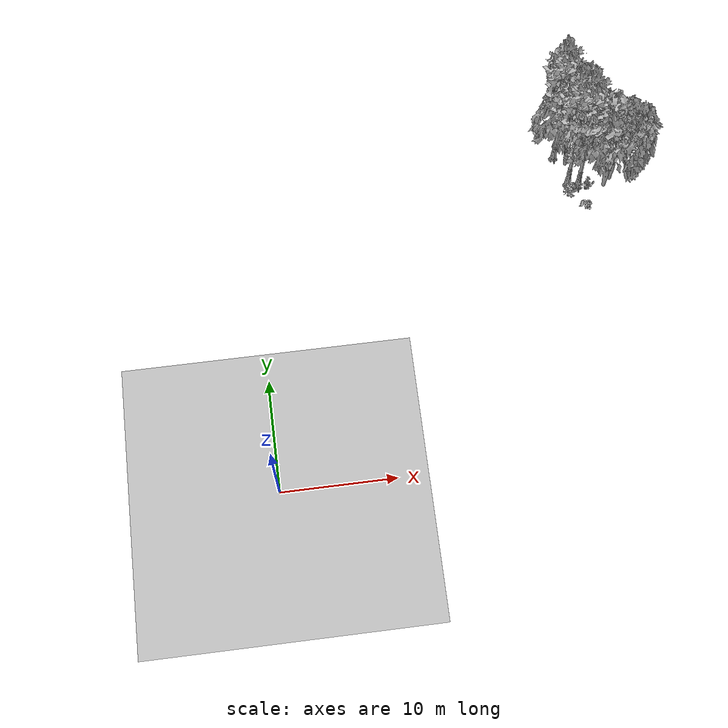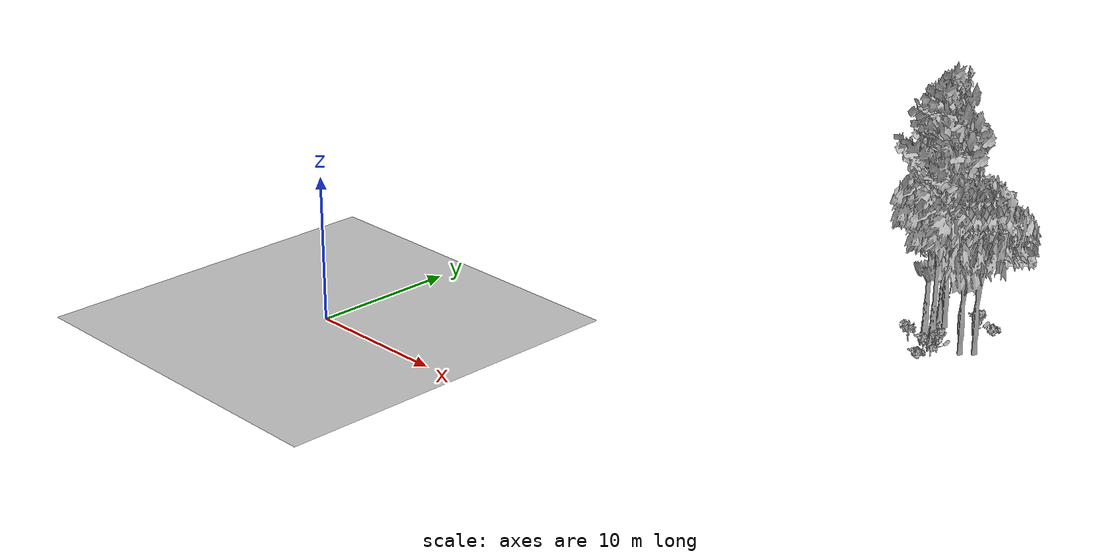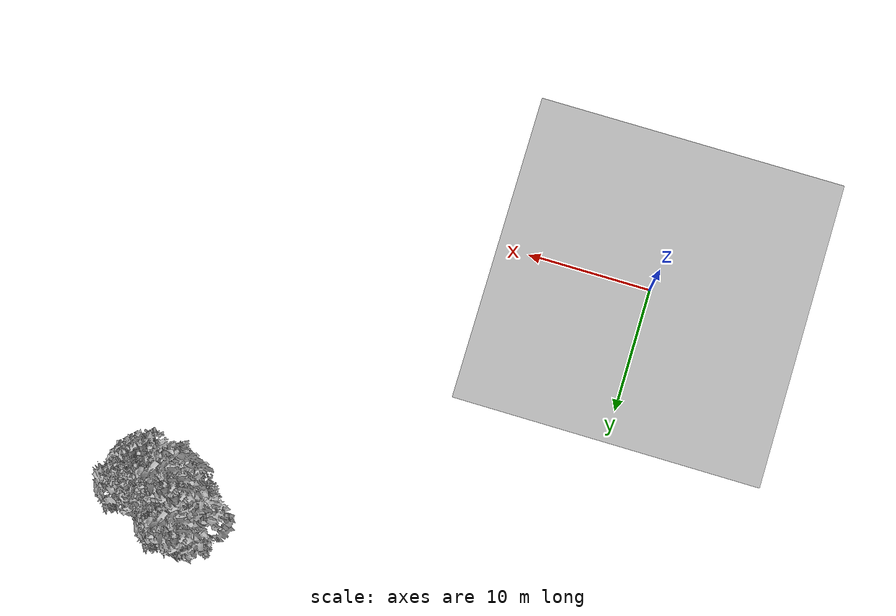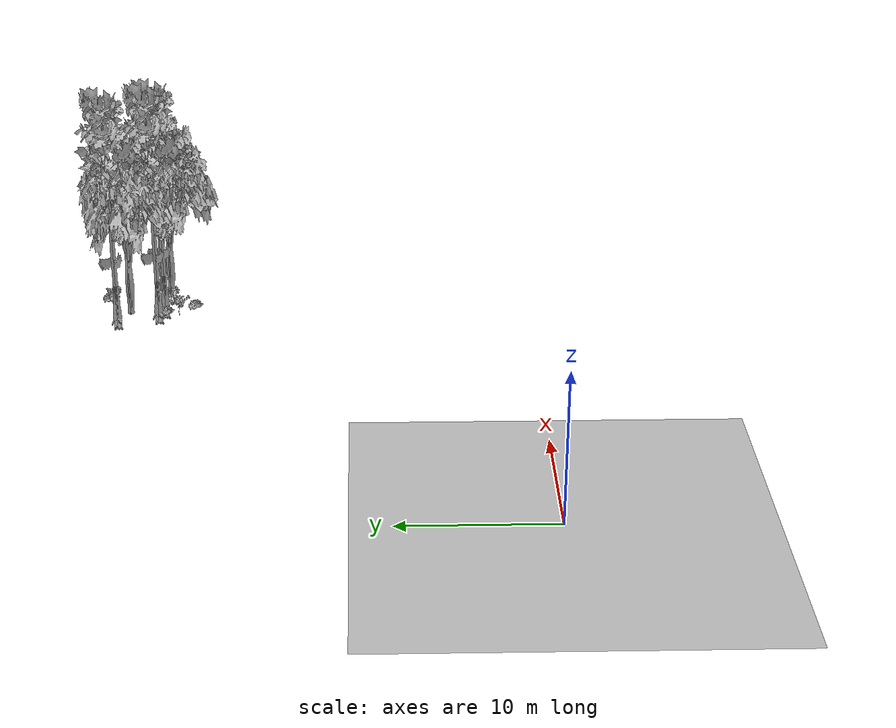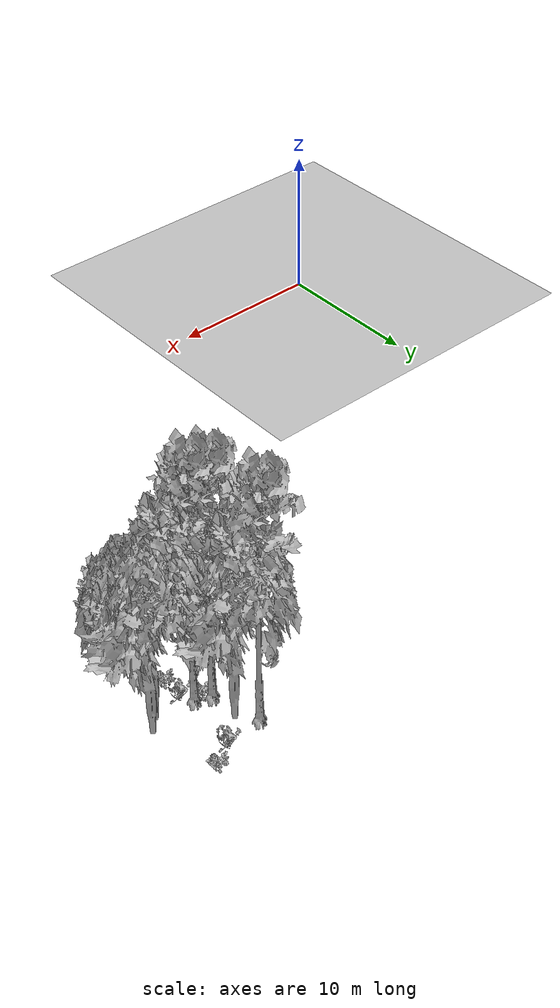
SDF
<sdf version="1.7">
 <world name="default">
  <model name="ground_plane">
   <static>1</static>
   <link name="link">
    <collision name="collision">
     <pose>-50 0 0 0 -0 0</pose>
     <geometry><plane><normal>0 0 1</normal><size>80 80</size></plane></geometry>
     <surface><contact><ode><min_depth>0.01</min_depth><max_vel>0</max_vel></ode></contact></surface>
    </collision>
    <visual name="grass">
     <cast_shadows>0</cast_shadows>
     <geometry>
      <mesh>
       <scale>0.46714285714285714 0.46714285714285714 0.1</scale>
       <uri>file://grass_plane/meshes/grass_plane.dae</uri>
      </mesh>
     </geometry>
    </visual>
   </link>
  </model>
  <model name="Tree 84">
   <static>1</static>
   <pose>29.062732720736875 26.18205261643321 0 1.57079 -0 0</pose>
   <link name="link">
    <collision name="collision">
     <geometry><mesh><scale>3.5 5 3.5</scale><uri>model://tree_9/meshes/tree_9.obj</uri></mesh></geometry>
    </collision>
    <visual name="visual">
     <geometry><mesh><scale>3.5 5 3.5</scale><uri>model://tree_9/meshes/tree_9.obj</uri></mesh></geometry>
    </visual>
   </link>
  </model>
  <model name="Tree 116">
   <static>1</static>
   <pose>32.20633724089387 25.51045634114088 0 1.57079 -0 0</pose>
   <link name="link">
    <collision name="collision">
     <geometry><mesh><scale>3.5 5 3.5</scale><uri>model://tree_2/meshes/tree_2.obj</uri></mesh></geometry>
    </collision>
    <visual name="visual">
     <geometry><mesh><scale>3.5 5 3.5</scale><uri>model://tree_2/meshes/tree_2.obj</uri></mesh></geometry>
    </visual>
   </link>
  </model>
  <model name="Tree 157">
   <static>1</static>
   <pose>29.94987255591097 25.777646393636402 0 1.57079 -0 0</pose>
   <link name="link">
    <collision name="collision">
     <geometry><mesh><scale>3.5 5 3.5</scale><uri>model://tree_9/meshes/tree_9.obj</uri></mesh></geometry>
    </collision>
    <visual name="visual">
     <geometry><mesh><scale>3.5 5 3.5</scale><uri>model://tree_9/meshes/tree_9.obj</uri></mesh></geometry>
    </visual>
   </link>
  </model>
  <model name="Tree 163">
   <static>1</static>
   <pose>32.8521718812827 26.15872839796593 0 1.57079 -0 0</pose>
   <link name="link">
    <collision name="collision">
     <geometry><mesh><scale>3.5 5 3.5</scale><uri>model://tree_2/meshes/tree_2.obj</uri></mesh></geometry>
    </collision>
    <visual name="visual">
     <geometry><mesh><scale>3.5 5 3.5</scale><uri>model://tree_2/meshes/tree_2.obj</uri></mesh></geometry>
    </visual>
   </link>
  </model>
  <model name="Tree 312">
   <static>1</static>
   <pose>28.231177688943447 29.025146943016807 0 1.57079 -0 0</pose>
   <link name="link">
    <collision name="collision">
     <geometry><mesh><scale>3.5 5 3.5</scale><uri>model://tree_9/meshes/tree_9.obj</uri></mesh></geometry>
    </collision>
    <visual name="visual">
     <geometry><mesh><scale>3.5 5 3.5</scale><uri>model://tree_9/meshes/tree_9.obj</uri></mesh></geometry>
    </visual>
   </link>
  </model>
  <model name="Tree 585">
   <static>1</static>
   <pose>29.07893568595867 28.13673771715753 0 1.57079 -0 0</pose>
   <link name="link">
    <collision name="collision">
     <geometry><mesh><scale>3.5 5 3.5</scale><uri>model://tree_2/meshes/tree_2.obj</uri></mesh></geometry>
    </collision>
    <visual name="visual">
     <geometry><mesh><scale>3.5 5 3.5</scale><uri>model://tree_2/meshes/tree_2.obj</uri></mesh></geometry>
    </visual>
   </link>
  </model>
  <model name="Bush 23">
   <static>1</static>
   <pose>31.697625746650274 29.924883633047045 0 1.57079 -0 0</pose>
   <link name="link">
    <collision name="collision">
     <geometry><mesh><scale>2 2 2</scale><uri>model://bush_2/meshes/bush_2.obj</uri></mesh></geometry>
     <surface><contact><collide_without_contact>false</collide_without_contact></contact></surface>
    </collision>
    <visual name="visual">
     <geometry><mesh><scale>2 2 2</scale><uri>model://bush_2/meshes/bush_2.obj</uri></mesh></geometry>
    </visual>
   </link>
  </model>
  <model name="Bush 289">
   <static>1</static>
   <pose>30.309323919756736 23.659382022931368 0 1.57079 -0 0</pose>
   <link name="link">
    <collision name="collision">
     <geometry><mesh><scale>2 2 2</scale><uri>model://bush_2/meshes/bush_2.obj</uri></mesh></geometry>
     <surface><contact><collide_without_contact>false</collide_without_contact></contact></surface>
    </collision>
    <visual name="visual">
     <geometry><mesh><scale>2 2 2</scale><uri>model://bush_2/meshes/bush_2.obj</uri></mesh></geometry>
    </visual>
   </link>
  </model>
  <model name="Bush 302">
   <static>1</static>
   <pose>28.85288028687536 24.70182826588676 0 1.57079 -0 0</pose>
   <link name="link">
    <collision name="collision">
     <geometry><mesh><scale>2 2 2</scale><uri>model://bush_5/meshes/bush_5.obj</uri></mesh></geometry>
     <surface><contact><collide_without_contact>false</collide_without_contact></contact></surface>
    </collision>
    <visual name="visual">
     <geometry><mesh><scale>2 2 2</scale><uri>model://bush_5/meshes/bush_5.obj</uri></mesh></geometry>
    </visual>
   </link>
  </model>
  <model name="Bush 368">
   <static>1</static>
   <pose>29.325449459760975 25.634997568264467 0 1.57079 -0 0</pose>
   <link name="link">
    <collision name="collision">
     <geometry><mesh><scale>2 2 2</scale><uri>model://bush_2/meshes/bush_2.obj</uri></mesh></geometry>
     <surface><contact><collide_without_contact>false</collide_without_contact></contact></surface>
    </collision>
    <visual name="visual">
     <geometry><mesh><scale>2 2 2</scale><uri>model://bush_2/meshes/bush_2.obj</uri></mesh></geometry>
    </visual>
   </link>
  </model>
  <model name="Bush 371">
   <static>1</static>
   <pose>30.62775532005115 25.303055643270895 0 1.57079 -0 0</pose>
   <link name="link">
    <collision name="collision">
     <geometry><mesh><scale>2 2 2</scale><uri>model://bush_4/meshes/bush_4.obj</uri></mesh></geometry>
     <surface><contact><collide_without_contact>false</collide_without_contact></contact></surface>
    </collision>
    <visual name="visual">
     <geometry><mesh><scale>2 2 2</scale><uri>model://bush_4/meshes/bush_4.obj</uri></mesh></geometry>
    </visual>
   </link>
  </model>
  <model name="Bush 398">
   <static>1</static>
   <pose>30.77351046905973 29.460477287866027 0 1.57079 -0 0</pose>
   <link name="link">
    <collision name="collision">
     <geometry><mesh><scale>2 2 2</scale><uri>model://bush_4/meshes/bush_4.obj</uri></mesh></geometry>
     <surface><contact><collide_without_contact>false</collide_without_contact></contact></surface>
    </collision>
    <visual name="visual">
     <geometry><mesh><scale>2 2 2</scale><uri>model://bush_4/meshes/bush_4.obj</uri></mesh></geometry>
    </visual>
   </link>
  </model>
 </world>
</sdf>
